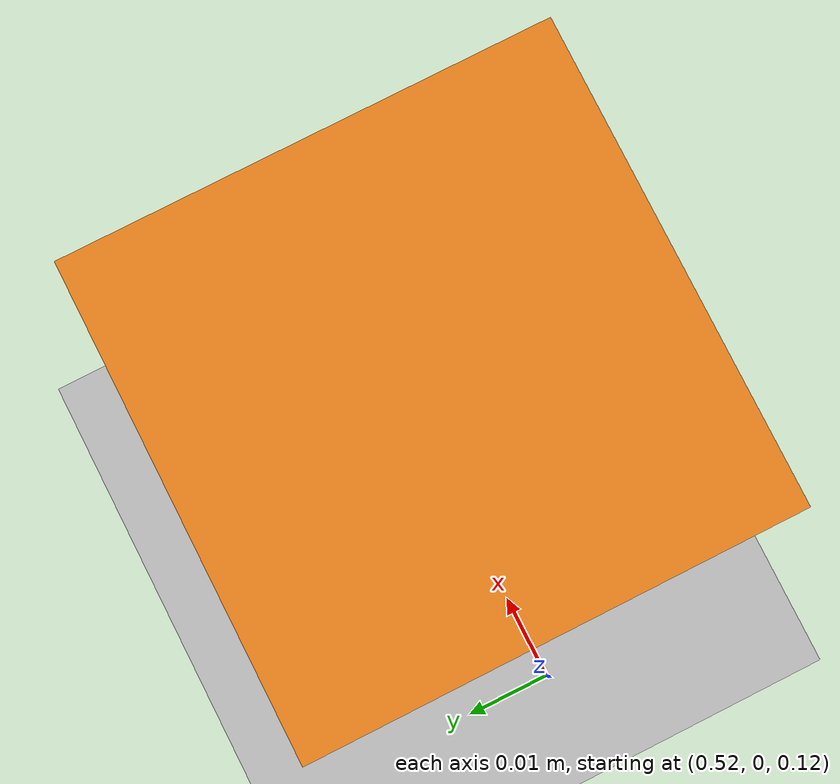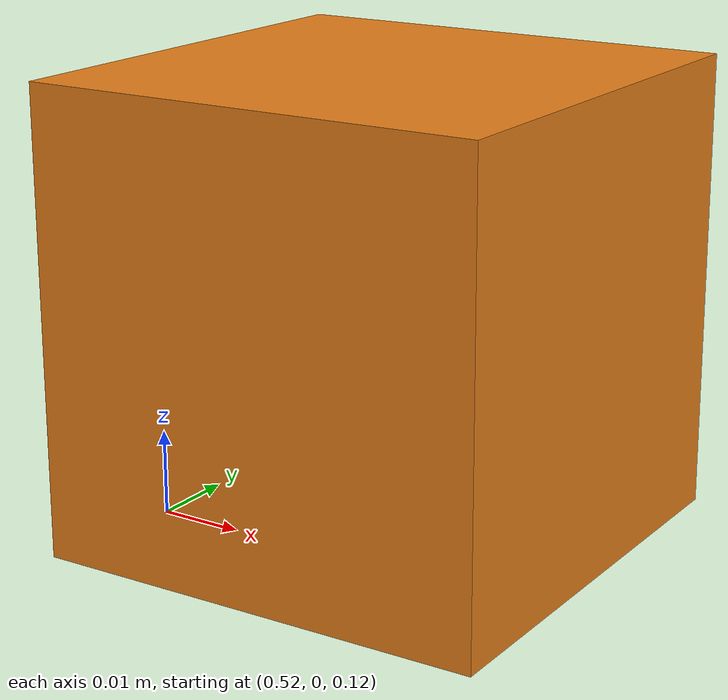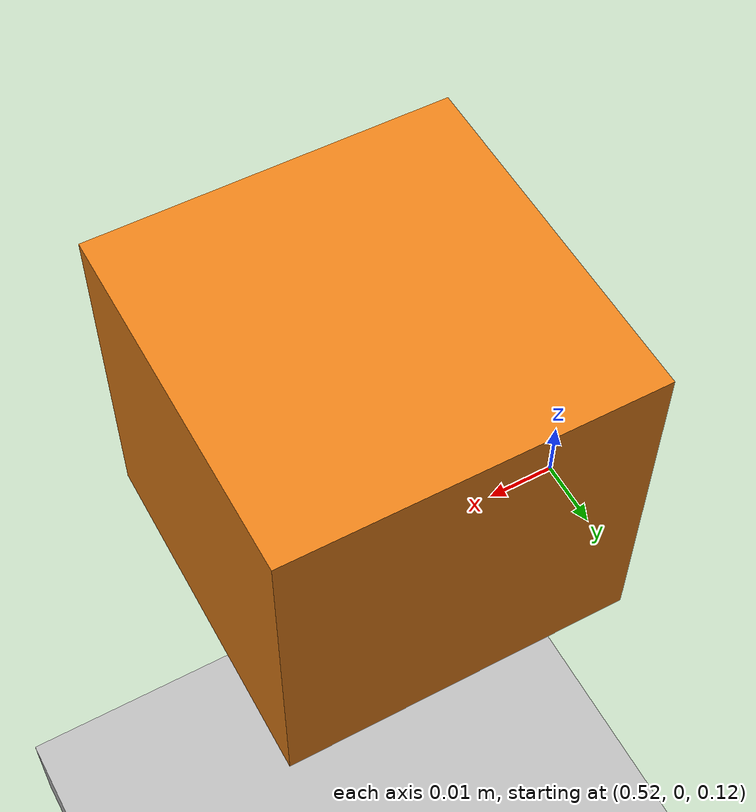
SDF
<?xml version="1.0" ?>
<!-- Lightweight world for manual grasp smoke tests: small dynamic box, high ground friction. -->
<sdf version="1.10">
  <world name="grasp_smoke">
    <physics type="ode">
      <max_step_size>0.001</max_step_size>
      <real_time_factor>1</real_time_factor>
      <real_time_update_rate>1000</real_time_update_rate>
    </physics>
    <gravity>0 0 -9.81</gravity>

    <model name="ground">
      <static>true</static>
      <link name="link">
        <collision name="collision">
          <geometry>
            <box>
              <size>20 20 0.02</size>
            </box>
          </geometry>
          <surface>
            <friction>
              <ode>
                <mu>4.0</mu>
                <mu2>4.0</mu2>
              </ode>
            </friction>
          </surface>
        </collision>
        <visual name="visual">
          <geometry>
            <box>
              <size>20 20 0.02</size>
            </box>
          </geometry>
        </visual>
      </link>
    </model>

    <model name="grasp_cube">
      <pose>0.55 0 0.15 0 0 0</pose>
      <link name="link">
        <inertial>
          <mass>0.12</mass>
          <inertia>
            <ixx>0.00002</ixx>
            <ixy>0</ixy>
            <ixz>0</ixz>
            <iyy>0.00002</iyy>
            <iyz>0</iyz>
            <izz>0.00002</izz>
          </inertia>
        </inertial>
        <collision name="collision">
          <geometry>
            <box>
              <size>0.05 0.05 0.05</size>
            </box>
          </geometry>
          <surface>
            <friction>
              <ode>
                <mu>3.0</mu>
                <mu2>3.0</mu2>
              </ode>
            </friction>
          </surface>
        </collision>
        <visual name="visual">
          <geometry>
            <box>
              <size>0.05 0.05 0.05</size>
            </box>
          </geometry>
          <material>
            <diffuse>0.9 0.5 0.1 1</diffuse>
          </material>
        </visual>
      </link>
    </model>
  </world>
</sdf>
